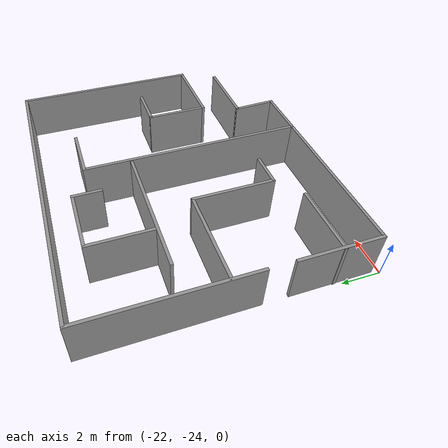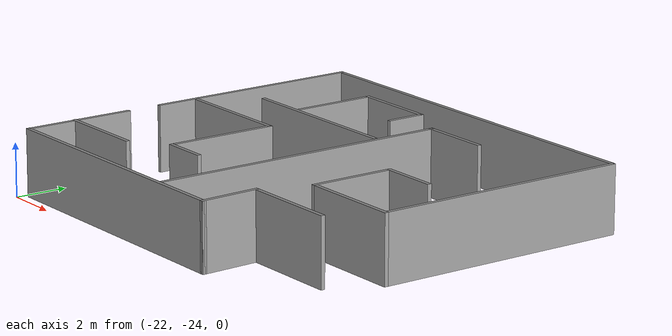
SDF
<?xml version='1.0'?>
<sdf version='1.7'>
  <model name='maze'>
    <pose>-10.9423 -11.8199 0 0 -0 0</pose>
    <link name='Wall_10'>
      <collision name='Wall_10_Collision'>
        <geometry>
          <box>
            <size>3.75 0.15 2.5</size>
          </box>
        </geometry>
        <pose>0 0 1.25 0 -0 0</pose>
      </collision>
      <visual name='Wall_10_Visual'>
        <pose>0 0 1.25 0 -0 0</pose>
        <geometry>
          <box>
            <size>3.75 0.15 2.5</size>
          </box>
        </geometry>
        <material>
          <script>
            <uri>file://media/materials/scripts/gazebo.material</uri>
            <name>Gazebo/Grey</name>
          </script>
          <ambient>1 1 1 1</ambient>
        </material>
        <meta>
          <layer>0</layer>
        </meta>
      </visual>
      <pose>1.77539 -9.57992 0 0 -0 3.14159</pose>
    </link>
    <link name='Wall_11'>
      <collision name='Wall_11_Collision'>
        <geometry>
          <box>
            <size>2.31377 0.15 2.5</size>
          </box>
        </geometry>
        <pose>0 0 1.25 0 -0 0</pose>
      </collision>
      <visual name='Wall_11_Visual'>
        <pose>0 0 1.25 0 -0 0</pose>
        <geometry>
          <box>
            <size>2.31377 0.15 2.5</size>
          </box>
        </geometry>
        <material>
          <script>
            <uri>file://media/materials/scripts/gazebo.material</uri>
            <name>Gazebo/Grey</name>
          </script>
          <ambient>1 1 1 1</ambient>
        </material>
        <meta>
          <layer>0</layer>
        </meta>
      </visual>
      <pose>-0.024611 -10.661 0 0 -0 -1.53339</pose>
    </link>
    <link name='Wall_12'>
      <collision name='Wall_12_Collision'>
        <geometry>
          <box>
            <size>11 0.15 2.5</size>
          </box>
        </geometry>
        <pose>0 0 1.25 0 -0 0</pose>
      </collision>
      <visual name='Wall_12_Visual'>
        <pose>0 0 1.25 0 -0 0</pose>
        <geometry>
          <box>
            <size>11 0.15 2.5</size>
          </box>
        </geometry>
        <material>
          <script>
            <uri>file://media/materials/scripts/gazebo.material</uri>
            <name>Gazebo/Grey</name>
          </script>
          <ambient>1 1 1 1</ambient>
        </material>
        <meta>
          <layer>0</layer>
        </meta>
      </visual>
      <pose>-5.40916 -11.7422 0 0 -0 3.14159</pose>
    </link>
    <link name='Wall_14'>
      <collision name='Wall_14_Collision'>
        <geometry>
          <box>
            <size>15.5 0.15 2.5</size>
          </box>
        </geometry>
        <pose>0 0 1.25 0 -0 0</pose>
      </collision>
      <visual name='Wall_14_Visual'>
        <pose>0 0 1.25 0 -0 0</pose>
        <geometry>
          <box>
            <size>15.5 0.15 2.5</size>
          </box>
        </geometry>
        <material>
          <script>
            <uri>file://media/materials/scripts/gazebo.material</uri>
            <name>Gazebo/Grey</name>
          </script>
          <ambient>1 1 1 1</ambient>
        </material>
        <meta>
          <layer>0</layer>
        </meta>
      </visual>
      <pose>-3.15916 1.85783 0 0 -0 0</pose>
    </link>
    <link name='Wall_15'>
      <collision name='Wall_15_Collision'>
        <geometry>
          <box>
            <size>9.75 0.15 2.5</size>
          </box>
        </geometry>
        <pose>0 0 1.25 0 -0 0</pose>
      </collision>
      <visual name='Wall_15_Visual'>
        <pose>0 0 1.25 0 -0 0</pose>
        <geometry>
          <box>
            <size>9.75 0.15 2.5</size>
          </box>
        </geometry>
        <material>
          <script>
            <uri>file://media/materials/scripts/gazebo.material</uri>
            <name>Gazebo/Grey</name>
          </script>
          <ambient>1 1 1 1</ambient>
        </material>
        <meta>
          <layer>0</layer>
        </meta>
      </visual>
      <pose>4.51584 -2.94217 0 0 -0 -1.5708</pose>
    </link>
    <link name='Wall_16'>
      <collision name='Wall_16_Collision'>
        <geometry>
          <box>
            <size>4 0.15 2.5</size>
          </box>
        </geometry>
        <pose>0 0 1.25 0 -0 0</pose>
      </collision>
      <visual name='Wall_16_Visual'>
        <pose>0 0 1.25 0 -0 0</pose>
        <geometry>
          <box>
            <size>4 0.15 2.5</size>
          </box>
        </geometry>
        <material>
          <script>
            <uri>file://media/materials/scripts/gazebo.material</uri>
            <name>Gazebo/Grey</name>
          </script>
          <ambient>1 1 1 1</ambient>
        </material>
        <meta>
          <layer>0</layer>
        </meta>
      </visual>
      <pose>2.59084 -7.74217 0 0 -0 3.14159</pose>
    </link>
    <link name='Wall_17'>
      <collision name='Wall_17_Collision'>
        <geometry>
          <box>
            <size>3.25 0.15 2.5</size>
          </box>
        </geometry>
        <pose>0 0 1.25 0 -0 0</pose>
      </collision>
      <visual name='Wall_17_Visual'>
        <pose>0 0 1.25 0 -0 0</pose>
        <geometry>
          <box>
            <size>3.25 0.15 2.5</size>
          </box>
        </geometry>
        <material>
          <script>
            <uri>file://media/materials/scripts/gazebo.material</uri>
            <name>Gazebo/Grey</name>
          </script>
          <ambient>1 1 1 1</ambient>
        </material>
        <meta>
          <layer>0</layer>
        </meta>
      </visual>
      <pose>0.665845 -6.19217 0 0 -0 1.5708</pose>
    </link>
    <link name='Wall_18'>
      <collision name='Wall_18_Collision'>
        <geometry>
          <box>
            <size>2.25 0.15 2.5</size>
          </box>
        </geometry>
        <pose>0 0 1.25 0 -0 0</pose>
      </collision>
      <visual name='Wall_18_Visual'>
        <pose>0 0 1.25 0 -0 0</pose>
        <geometry>
          <box>
            <size>2.25 0.15 2.5</size>
          </box>
        </geometry>
        <material>
          <script>
            <uri>file://media/materials/scripts/gazebo.material</uri>
            <name>Gazebo/Grey</name>
          </script>
          <ambient>1 1 1 1</ambient>
        </material>
        <meta>
          <layer>0</layer>
        </meta>
      </visual>
      <pose>1.71585 -4.64217 0 0 -0 0</pose>
    </link>
    <link name='Wall_20'>
      <collision name='Wall_20_Collision'>
        <geometry>
          <box>
            <size>11.5 0.15 2.5</size>
          </box>
        </geometry>
        <pose>0 0 1.25 0 -0 0</pose>
      </collision>
      <visual name='Wall_20_Visual'>
        <pose>0 0 1.25 0 -0 0</pose>
        <geometry>
          <box>
            <size>11.5 0.15 2.5</size>
          </box>
        </geometry>
        <material>
          <script>
            <uri>file://media/materials/scripts/gazebo.material</uri>
            <name>Gazebo/Grey</name>
          </script>
          <ambient>1 1 1 1</ambient>
        </material>
        <meta>
          <layer>0</layer>
        </meta>
      </visual>
      <pose>-2.57386 -6.00861 0 0 -0 1.5708</pose>
    </link>
    <link name='Wall_21'>
      <collision name='Wall_21_Collision'>
        <geometry>
          <box>
            <size>2.75 0.15 2.5</size>
          </box>
        </geometry>
        <pose>0 0 1.25 0 -0 0</pose>
      </collision>
      <visual name='Wall_21_Visual'>
        <pose>0 0 1.25 0 -0 0</pose>
        <geometry>
          <box>
            <size>2.75 0.15 2.5</size>
          </box>
        </geometry>
        <material>
          <script>
            <uri>file://media/materials/scripts/gazebo.material</uri>
            <name>Gazebo/Grey</name>
          </script>
          <ambient>1 1 1 1</ambient>
        </material>
        <meta>
          <layer>0</layer>
        </meta>
      </visual>
      <pose>-1.27386 -0.333609 0 0 -0 0</pose>
    </link>
    <link name='Wall_23'>
      <collision name='Wall_23_Collision'>
        <geometry>
          <box>
            <size>6.75 0.15 2.5</size>
          </box>
        </geometry>
        <pose>0 0 1.25 0 -0 0</pose>
      </collision>
      <visual name='Wall_23_Visual'>
        <pose>0 0 1.25 0 -0 0</pose>
        <geometry>
          <box>
            <size>6.75 0.15 2.5</size>
          </box>
        </geometry>
        <material>
          <script>
            <uri>file://media/materials/scripts/gazebo.material</uri>
            <name>Gazebo/Grey</name>
          </script>
          <ambient>1 1 1 1</ambient>
        </material>
        <meta>
          <layer>0</layer>
        </meta>
      </visual>
      <pose>-6.07614 -2.70247 0 0 -0 3.14159</pose>
    </link>
    <link name='Wall_25'>
      <collision name='Wall_25_Collision'>
        <geometry>
          <box>
            <size>3.25 0.15 2.5</size>
          </box>
        </geometry>
        <pose>0 0 1.25 0 -0 0</pose>
      </collision>
      <visual name='Wall_25_Visual'>
        <pose>0 0 1.25 0 -0 0</pose>
        <geometry>
          <box>
            <size>3.25 0.15 2.5</size>
          </box>
        </geometry>
        <material>
          <script>
            <uri>file://media/materials/scripts/gazebo.material</uri>
            <name>Gazebo/Grey</name>
          </script>
          <ambient>1 1 1 1</ambient>
        </material>
        <meta>
          <layer>0</layer>
        </meta>
      </visual>
      <pose>-7.38807 -1.0311 0 0 -0 1.5708</pose>
    </link>
    <link name='Wall_26'>
      <collision name='Wall_26_Collision'>
        <geometry>
          <box>
            <size>3.25 0.15 2.5</size>
          </box>
        </geometry>
        <pose>0 0 1.25 0 -0 0</pose>
      </collision>
      <visual name='Wall_26_Visual'>
        <pose>0 0 1.25 0 -0 0</pose>
        <geometry>
          <box>
            <size>3.25 0.15 2.5</size>
          </box>
        </geometry>
        <material>
          <script>
            <uri>file://media/materials/scripts/gazebo.material</uri>
            <name>Gazebo/Grey</name>
          </script>
          <ambient>1 1 1 1</ambient>
        </material>
        <meta>
          <layer>0</layer>
        </meta>
      </visual>
      <pose>-5.83807 0.518896 0 0 -0 0</pose>
    </link>
    <link name='Wall_27'>
      <collision name='Wall_27_Collision'>
        <geometry>
          <box>
            <size>1.5 0.15 2.5</size>
          </box>
        </geometry>
        <pose>0 0 1.25 0 -0 0</pose>
      </collision>
      <visual name='Wall_27_Visual'>
        <pose>0 0 1.25 0 -0 0</pose>
        <geometry>
          <box>
            <size>1.5 0.15 2.5</size>
          </box>
        </geometry>
        <material>
          <script>
            <uri>file://media/materials/scripts/gazebo.material</uri>
            <name>Gazebo/Grey</name>
          </script>
          <ambient>1 1 1 1</ambient>
        </material>
        <meta>
          <layer>0</layer>
        </meta>
      </visual>
      <pose>-4.28807 -0.156104 0 0 -0 -1.5708</pose>
    </link>
    <link name='Wall_29'>
      <collision name='Wall_29_Collision'>
        <geometry>
          <box>
            <size>4.75 0.15 2.5</size>
          </box>
        </geometry>
        <pose>0 0 1.25 0 -0 0</pose>
      </collision>
      <visual name='Wall_29_Visual'>
        <pose>0 0 1.25 0 -0 0</pose>
        <geometry>
          <box>
            <size>4.75 0.15 2.5</size>
          </box>
        </geometry>
        <material>
          <script>
            <uri>file://media/materials/scripts/gazebo.material</uri>
            <name>Gazebo/Grey</name>
          </script>
          <ambient>1 1 1 1</ambient>
        </material>
        <meta>
          <layer>0</layer>
        </meta>
      </visual>
      <pose>-8.48634 -4.72525 0 0 -0 0</pose>
    </link>
    <link name='Wall_30'>
      <collision name='Wall_30_Collision'>
        <geometry>
          <box>
            <size>4.25 0.15 2.5</size>
          </box>
        </geometry>
        <pose>0 0 1.25 0 -0 0</pose>
      </collision>
      <visual name='Wall_30_Visual'>
        <pose>0 0 1.25 0 -0 0</pose>
        <geometry>
          <box>
            <size>4.25 0.15 2.5</size>
          </box>
        </geometry>
        <material>
          <script>
            <uri>file://media/materials/scripts/gazebo.material</uri>
            <name>Gazebo/Grey</name>
          </script>
          <ambient>1 1 1 1</ambient>
        </material>
        <meta>
          <layer>0</layer>
        </meta>
      </visual>
      <pose>-6.18634 -6.77525 0 0 -0 -1.5708</pose>
    </link>
    <link name='Wall_31'>
      <collision name='Wall_31_Collision'>
        <geometry>
          <box>
            <size>1.75 0.15 2.5</size>
          </box>
        </geometry>
        <pose>0 0 1.25 0 -0 0</pose>
      </collision>
      <visual name='Wall_31_Visual'>
        <pose>0 0 1.25 0 -0 0</pose>
        <geometry>
          <box>
            <size>1.75 0.15 2.5</size>
          </box>
        </geometry>
        <material>
          <script>
            <uri>file://media/materials/scripts/gazebo.material</uri>
            <name>Gazebo/Grey</name>
          </script>
          <ambient>1 1 1 1</ambient>
        </material>
        <meta>
          <layer>0</layer>
        </meta>
      </visual>
      <pose>-5.38634 -8.82525 0 0 -0 0</pose>
    </link>
    <link name='Wall_33'>
      <collision name='Wall_33_Collision'>
        <geometry>
          <box>
            <size>3.5 0.15 2.5</size>
          </box>
        </geometry>
        <pose>0 0 1.25 0 -0 0</pose>
      </collision>
      <visual name='Wall_33_Visual'>
        <pose>0 0 1.25 0 -0 0</pose>
        <geometry>
          <box>
            <size>3.5 0.15 2.5</size>
          </box>
        </geometry>
        <material>
          <script>
            <uri>file://media/materials/scripts/gazebo.material</uri>
            <name>Gazebo/Grey</name>
          </script>
          <ambient>1 1 1 1</ambient>
        </material>
        <meta>
          <layer>0</layer>
        </meta>
      </visual>
      <pose>-9.19225 -9.82265 0 0 -0 0</pose>
    </link>
    <link name='Wall_35'>
      <collision name='Wall_35_Collision'>
        <geometry>
          <box>
            <size>8.25 0.15 2.5</size>
          </box>
        </geometry>
        <pose>0 0 1.25 0 -0 0</pose>
      </collision>
      <visual name='Wall_35_Visual'>
        <pose>0 0 1.25 0 -0 0</pose>
        <geometry>
          <box>
            <size>8.25 0.15 2.5</size>
          </box>
        </geometry>
        <material>
          <script>
            <uri>file://media/materials/scripts/gazebo.material</uri>
            <name>Gazebo/Grey</name>
          </script>
          <ambient>1 1 1 1</ambient>
        </material>
        <meta>
          <layer>0</layer>
        </meta>
      </visual>
      <pose>-10.8342 -2.19217 0 0 -0 -1.5708</pose>
    </link>
    <link name='Wall_37'>
      <collision name='Wall_37_Collision'>
        <geometry>
          <box>
            <size>4.25 0.15 2.5</size>
          </box>
        </geometry>
        <pose>0 0 1.25 0 -0 0</pose>
      </collision>
      <visual name='Wall_37_Visual'>
        <pose>0 0 1.25 0 -0 0</pose>
        <geometry>
          <box>
            <size>4.25 0.15 2.5</size>
          </box>
        </geometry>
        <material>
          <script>
            <uri>file://media/materials/scripts/gazebo.material</uri>
            <name>Gazebo/Grey</name>
          </script>
          <ambient>1 1 1 1</ambient>
        </material>
        <meta>
          <layer>0</layer>
        </meta>
      </visual>
      <pose>-10.8342 -9.69217 0 0 -0 1.5708</pose>
    </link>
    <static>1</static>
  </model>
</sdf>
